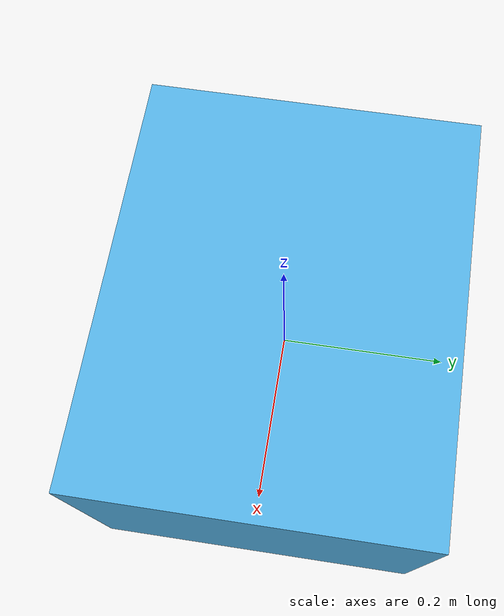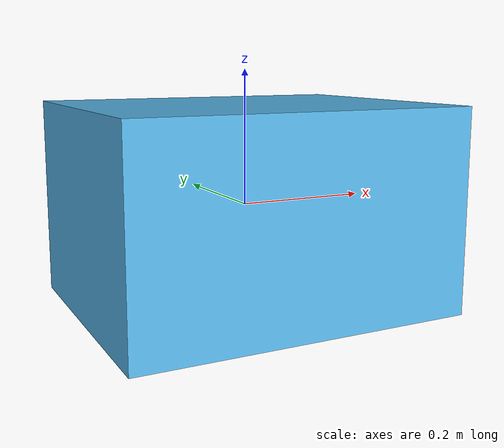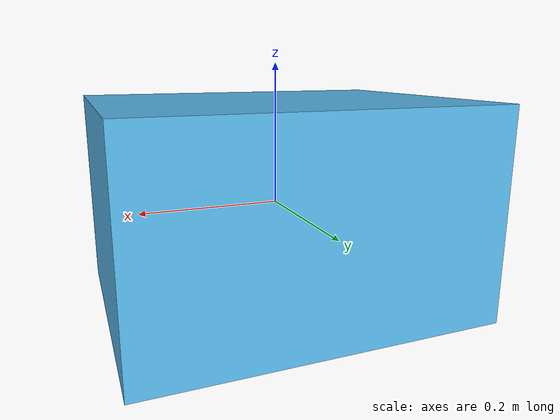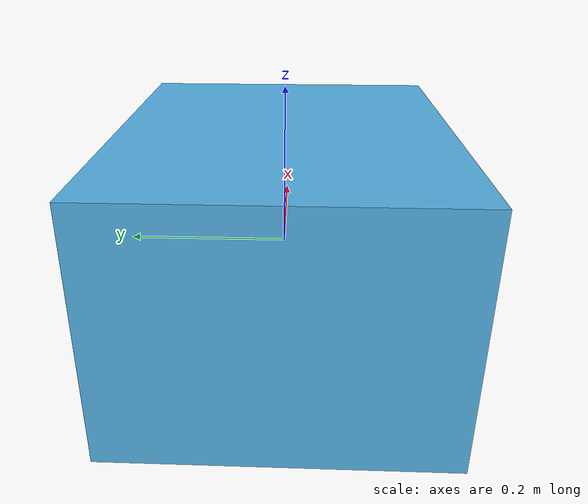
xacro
<?xml version="1.0"?>
<robot xmlns:xacro="http://www.ros.org/wiki/xacro" name="asep">

   <!-- Include macros -->
   <xacro:include filename="intertial.xacro"/>
   <xacro:include filename="camera.xacro" />

   <!-- Define properties -->
   <xacro:property name="length" value="0.5" />
   <xacro:property name="width" value="0.4" />
   <xacro:property name="height" value="0.3" />
   <xacro:property name="mass" value="10" />

   <!-- Links -->
   <link name="base_link" />

   <link name="chassis">
      <visual>
         <geometry>
            <box size="${length} ${width} ${height}" />
         </geometry>
      </visual>
      <collision>
         <geometry>
            <box size="${length} ${width} ${height}" />
         </geometry>
      </collision>
      <xacro:inertial mass="${mass}" x="${length}" y="${width}" z="${height}"/>
   </link>

   <joint name="base_link_chassis_joint" type="fixed">
      <parent link="base_link" />
      <child link="chassis" />
      <origin xyz="0 0 0" />
   </joint>

   <!-- CAMERA -->
   <xacro:camera parent_link="chassis">
      <origin xyz="${length / 2} 0 0" />
   </xacro:camera>

   <!-- Plugin Controller -->
   <gazebo>
      <plugin name="rov_controller" filename="librov_controller.so">
         <ros>
            <remapping>cmd_vel:=/cmd_vel</remapping>
            <remapping>camera:=/camera</remapping>
            <namespace>/</namespace>
            <parameter name="use_sim_time">true</parameter>
         </ros>
      </plugin>
   </gazebo>

</robot>

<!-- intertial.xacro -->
<robot xmlns:xacro="http://www.ros.org/wiki/xacro">

<xacro:macro name="inertial" params="mass x y z">
  <inertial>
    <mass value="${mass}" />
    <inertia
      ixx="${(1/12.0)*mass*(y*y+z*z)}" ixy="0" ixz="0"
      iyy="${(1/12.0)*mass*(x*x+z*z)}" iyz="0" izz="${(1/12.0)*mass*(x*x+y*y)}"/>
  </inertial>
</xacro:macro>

</robot>

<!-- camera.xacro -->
<robot xmlns:xacro="http://www.ros.org/wiki/xacro">

   <xacro:macro name="camera" params="parent_link *origin">

      <link name="camera_link" />
      <link name="camera_frame" />

      <joint name="camera_link_camera_frame_joint" type="fixed">
         <parent link="camera_link" />
         <child link="camera_frame" />
         <origin xyz="0 0 0" rpy="${-pi/2} 0 ${-pi/2}" />
      </joint>

      <joint name="${parent_link}_camera_link_joint" type="fixed">
         <parent link="${parent_link}" />
         <child link="camera_link" />
         <xacro:insert_block name="origin" />
      </joint>

      <gazebo reference="camera_link">
         <sensor name="camera_sensor" type="camera">
            <visualize>true</visualize>
            <update_rate>10</update_rate>
            <camera name="camera">
               <horizontal_fov>1.089</horizontal_fov>
               <image>
                  <format>B8G8R8</format>
                  <width>640</width>
                  <height>640</height>
               </image>
               <clip>
                  <near>0.01</near>
                  <far>10.0</far>
               </clip>
            </camera>
            <plugin name="camera_controller" filename="libgazebo_ros_camera.so">
               <frame_name>camera_frame</frame_name>
            </plugin>
         </sensor>
      </gazebo>

   </xacro:macro>

</robot>
